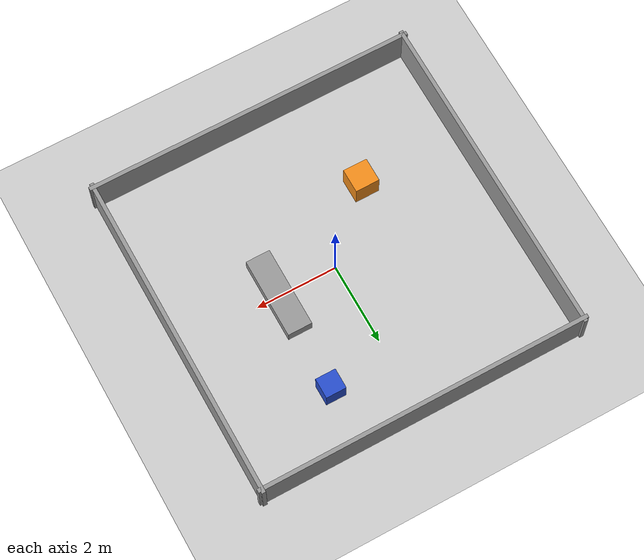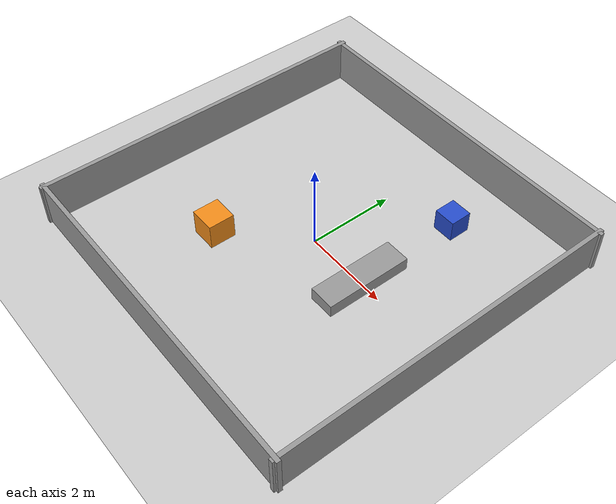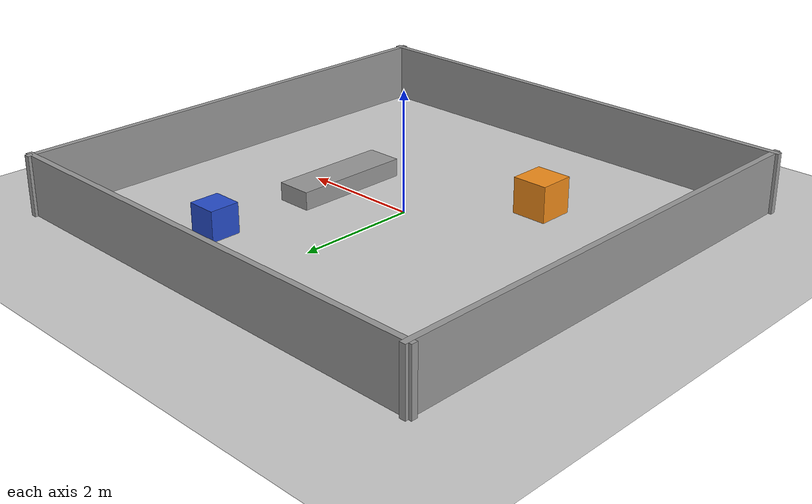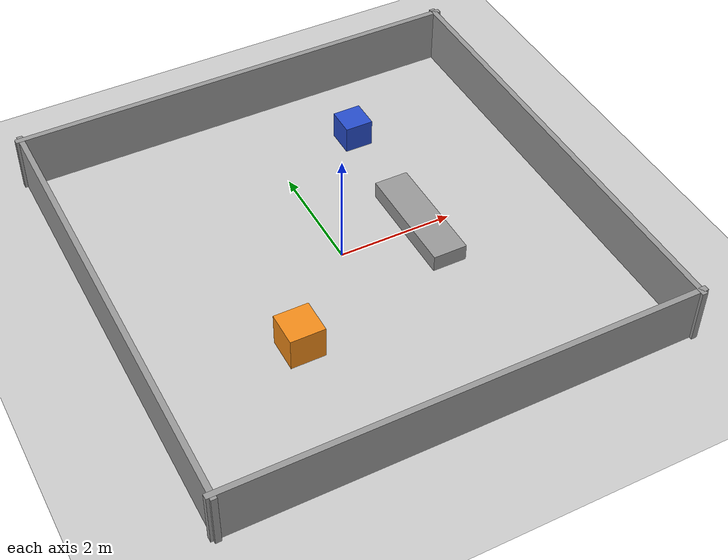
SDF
<?xml version="1.0"?>
<sdf version="1.7">
  <world name="default">
    <physics type="ode">
      <max_step_size>0.001</max_step_size>
      <real_time_update_rate>1000</real_time_update_rate>
    </physics>
    <gravity>0 0 -9.8</gravity>

    <include>
      <uri>model://sun</uri>
    </include>
    <include>
      <uri>model://ground_plane</uri>
    </include>

    <!-- 北墙 -->
    <model name="wall_north">
      <static>true</static>
      <pose>0 4 0.5 0 0 0</pose>
      <link name="link">
        <collision name="collision">
          <geometry><box><size>8.2 0.1 1.0</size></box></geometry>
        </collision>
        <visual name="visual">
          <geometry><box><size>8.2 0.1 1.0</size></box></geometry>
          <material><script><name>Gazebo/Grey</name></script></material>
        </visual>
      </link>
    </model>

    <!-- 南墙 -->
    <model name="wall_south">
      <static>true</static>
      <pose>0 -4 0.5 0 0 0</pose>
      <link name="link">
        <collision name="collision">
          <geometry><box><size>8.2 0.1 1.0</size></box></geometry>
        </collision>
        <visual name="visual">
          <geometry><box><size>8.2 0.1 1.0</size></box></geometry>
          <material><script><name>Gazebo/Grey</name></script></material>
        </visual>
      </link>
    </model>

    <!-- 东墙 -->
    <model name="wall_east">
      <static>true</static>
      <pose>4 0 0.5 0 0 0</pose>
      <link name="link">
        <collision name="collision">
          <geometry><box><size>0.1 8.2 1.0</size></box></geometry>
        </collision>
        <visual name="visual">
          <geometry><box><size>0.1 8.2 1.0</size></box></geometry>
          <material><script><name>Gazebo/Grey</name></script></material>
        </visual>
      </link>
    </model>

    <!-- 西墙 -->
    <model name="wall_west">
      <static>true</static>
      <pose>-4 0 0.5 0 0 0</pose>
      <link name="link">
        <collision name="collision">
          <geometry><box><size>0.1 8.2 1.0</size></box></geometry>
        </collision>
        <visual name="visual">
          <geometry><box><size>0.1 8.2 1.0</size></box></geometry>
          <material><script><name>Gazebo/Grey</name></script></material>
        </visual>
      </link>
    </model>

    <!-- 长桌：沿 Y 轴 2.0 m 长，沿 X 轴 0.6 m 深，高 0.30 m。
         桌面前沿在 x = 1.15，底座中心在 x = 1.45。机器人从原点沿 +x
         接近时，Nav2 的观察位（standoff）在 x ~= 0.85，桌子不会挡在
         起点到观察位的路径上。红方块由 launch 生成在桌面中心。 -->
    <model name="grasp_table">
      <static>true</static>
      <pose>1.45 0.0 0.15 0 0 0</pose>
      <link name="link">
        <collision name="collision">
          <geometry><box><size>0.6 2.0 0.3</size></box></geometry>
        </collision>
        <visual name="visual">
          <geometry><box><size>0.6 2.0 0.3</size></box></geometry>
          <material><script><name>Gazebo/Grey</name></script></material>
        </visual>
      </link>
    </model>

    <!-- 房内障碍物 1。原来在 (1.5, 1.0)，会与沿 Y 轴摆放到 ±1.0 的长桌
         重叠，因此移到桌子北侧留出空隙。 -->
    <model name="box_1">
      <static>true</static>
      <pose>1.5 2.5 0.25 0 0 0</pose>
      <link name="link">
        <collision name="collision">
          <geometry><box><size>0.5 0.5 0.5</size></box></geometry>
        </collision>
        <visual name="visual">
          <geometry><box><size>0.5 0.5 0.5</size></box></geometry>
          <material><script><name>Gazebo/Blue</name></script></material>
        </visual>
      </link>
    </model>

    <!-- 房内障碍物 2 -->
    <model name="box_2">
      <static>true</static>
      <pose>-1.5 -1.5 0.3 0 0 0</pose>
      <link name="link">
        <collision name="collision">
          <geometry><box><size>0.6 0.6 0.6</size></box></geometry>
        </collision>
        <visual name="visual">
          <geometry><box><size>0.6 0.6 0.6</size></box></geometry>
          <material><script><name>Gazebo/Orange</name></script></material>
        </visual>
      </link>
    </model>
  </world>
</sdf>
